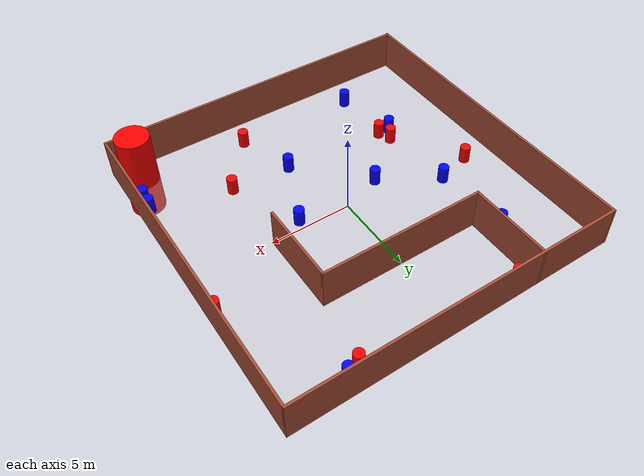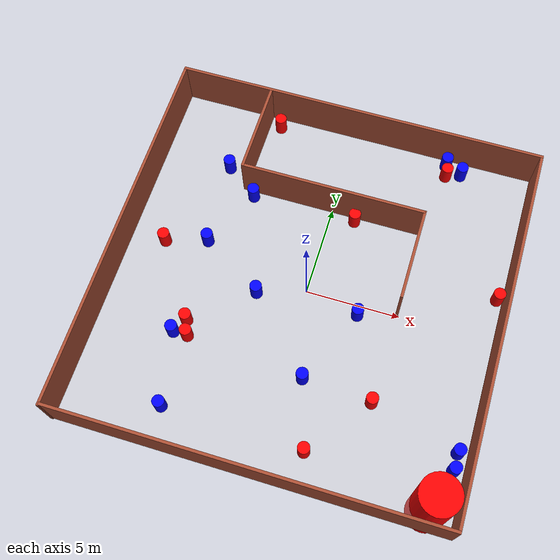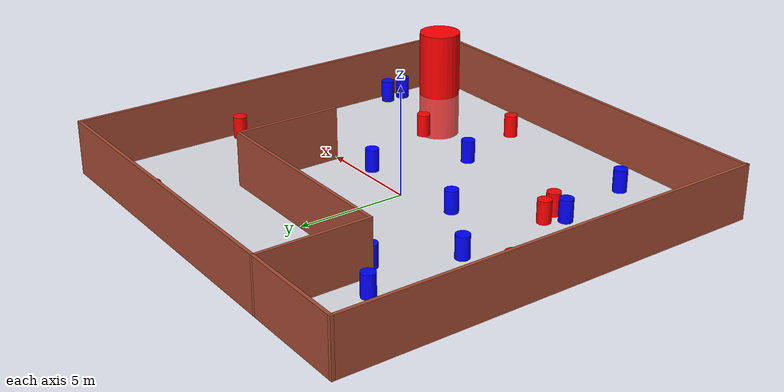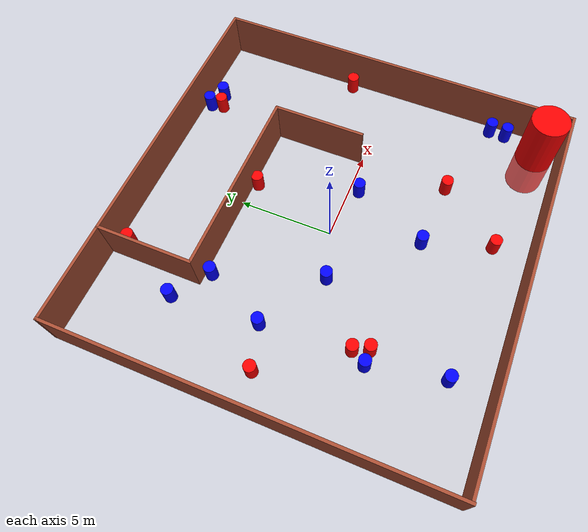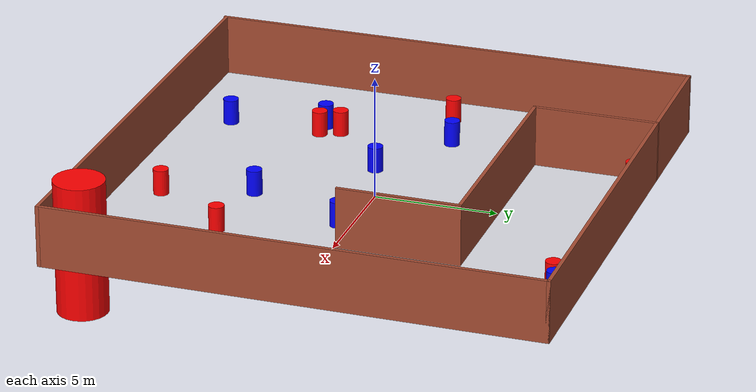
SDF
<sdf version="1.6">
 <world name="default">
  <light name="sun" type="directional">
   <pose>0 0 10 0 -0 0</pose>
   <diffuse>1 1 1 1</diffuse>
   <specular>1 1 1 1</specular>
   <attenuation>
    <range>1000</range>
    <constant>0.9</constant>
    <linear>0.01</linear>
    <quadratic>0.001</quadratic>
   </attenuation>
   <direction>-0.5 0.1 -0.9</direction>
  </light>
  <gravity>0 0 -9.8</gravity>
  <magnetic_field>6e-06 2.3e-05 -4.2e-05</magnetic_field>
  <atmosphere type="adiabatic"/>
  <physics name="default_physics" default="0" type="ode">
   <max_step_size>0.001</max_step_size>
   <real_time_factor>1</real_time_factor>
   <real_time_update_rate>1000</real_time_update_rate>
  </physics>
  <scene><ambient>0.4 0.4 0.4 1</ambient><background>0.7 0.7 0.7 1</background><shadows>1</shadows></scene>
  <spherical_coordinates>
   <surface_model>EARTH_WGS84</surface_model>
   <latitude_deg>0</latitude_deg>
   <longitude_deg>0</longitude_deg>
   <elevation>0</elevation>
   <heading_deg>0</heading_deg>
  </spherical_coordinates>
  <model name="Nuclear_workshop_with_barrels">
   <link name="link_0">
    <pose>4.22455 -4.64819 0.041667 0 -0 0</pose>
    <inertial>
     <mass>0.414228</mass>
     <inertia>
      <ixx>0.0482023</ixx>
      <ixy>0</ixy>
      <ixz>0</ixz>
      <iyy>0.0482023</iyy>
      <iyz>0</iyz>
      <izz>0.0204481</izz>
     </inertia>
    </inertial>
    <visual name="visual">
     <geometry><cylinder><radius>0.314211</radius><length>1.04891</length></cylinder></geometry>
     <material>
      <lighting>1</lighting>
      <script><uri>file://media/materials/scripts/gazebo.material</uri><name>Gazebo/Grey</name></script>
      <shader type="pixel"><normal_map>__default__</normal_map></shader>
      <ambient>1 0 0 1</ambient>
      <diffuse>1 0 0 1</diffuse>
      <specular>1 0 0 1</specular>
      <emissive>1 0 0 1</emissive>
     </material>
    </visual>
    <collision name="collision">
     <geometry><cylinder><radius>0.314211</radius><length>1.04891</length></cylinder></geometry>
     <surface>
      <friction>
       <ode><mu>1</mu><mu2>1</mu2><fdir1>0 0 0</fdir1><slip1>0</slip1><slip2>0</slip2></ode>
       <torsional>
        <coefficient>1</coefficient>
        <patch_radius>0</patch_radius>
        <surface_radius>0</surface_radius>
        <use_patch_radius>1</use_patch_radius>
        <ode><slip>0</slip></ode>
       </torsional>
      </friction>
      <bounce><restitution_coefficient>0</restitution_coefficient><threshold>1e+06</threshold></bounce>
      <contact>
       <collide_without_contact>0</collide_without_contact>
       <collide_without_contact_bitmask>1</collide_without_contact_bitmask>
       <collide_bitmask>1</collide_bitmask>
       <ode>
        <soft_cfm>0</soft_cfm>
        <soft_erp>0.2</soft_erp>
        <kp>1e+13</kp>
        <kd>1</kd>
        <max_vel>0.01</max_vel>
        <min_depth>0</min_depth>
       </ode>
       <bullet>
        <split_impulse>1</split_impulse>
        <split_impulse_penetration_threshold>-0.01</split_impulse_penetration_threshold>
        <soft_cfm>0</soft_cfm>
        <soft_erp>0.2</soft_erp>
        <kp>1e+13</kp>
        <kd>1</kd>
       </bullet>
      </contact>
     </surface>
    </collision>
   </link>
   <link name="link_0_clone">
    <pose>-4.85476 9.44569 0.041667 0 -0 0</pose>
    <inertial>
     <mass>0.414228</mass>
     <inertia>
      <ixx>0.0482023</ixx>
      <ixy>0</ixy>
      <ixz>0</ixz>
      <iyy>0.0482023</iyy>
      <iyz>0</iyz>
      <izz>0.0204481</izz>
     </inertia>
    </inertial>
    <visual name="visual">
     <geometry><cylinder><radius>0.314211</radius><length>1.04891</length></cylinder></geometry>
     <material>
      <lighting>1</lighting>
      <script><uri>file://media/materials/scripts/gazebo.material</uri><name>Gazebo/Grey</name></script>
      <shader type="pixel"><normal_map>__default__</normal_map></shader>
      <ambient>1 0 0 1</ambient>
      <diffuse>1 0 0 1</diffuse>
      <specular>1 0 0 1</specular>
      <emissive>1 0 0 1</emissive>
     </material>
    </visual>
    <collision name="collision">
     <geometry><cylinder><radius>0.314211</radius><length>1.04891</length></cylinder></geometry>
     <surface>
      <friction>
       <ode><mu>1</mu><mu2>1</mu2><fdir1>0 0 0</fdir1><slip1>0</slip1><slip2>0</slip2></ode>
       <torsional>
        <coefficient>1</coefficient>
        <patch_radius>0</patch_radius>
        <surface_radius>0</surface_radius>
        <use_patch_radius>1</use_patch_radius>
        <ode><slip>0</slip></ode>
       </torsional>
      </friction>
      <bounce><restitution_coefficient>0</restitution_coefficient><threshold>1e+06</threshold></bounce>
      <contact>
       <collide_without_contact>0</collide_without_contact>
       <collide_without_contact_bitmask>1</collide_without_contact_bitmask>
       <collide_bitmask>1</collide_bitmask>
       <ode>
        <soft_cfm>0</soft_cfm>
        <soft_erp>0.2</soft_erp>
        <kp>1e+13</kp>
        <kd>1</kd>
        <max_vel>0.01</max_vel>
        <min_depth>0</min_depth>
       </ode>
       <bullet>
        <split_impulse>1</split_impulse>
        <split_impulse_penetration_threshold>-0.01</split_impulse_penetration_threshold>
        <soft_cfm>0</soft_cfm>
        <soft_erp>0.2</soft_erp>
        <kp>1e+13</kp>
        <kd>1</kd>
       </bullet>
      </contact>
     </surface>
    </collision>
   </link>
   <link name="link_0_clone_0">
    <pose>-6.00021 -3.15272 0.041667 0 -0 0</pose>
    <inertial>
     <mass>0.414228</mass>
     <inertia>
      <ixx>0.0482023</ixx>
      <ixy>0</ixy>
      <ixz>0</ixz>
      <iyy>0.0482023</iyy>
      <iyz>0</iyz>
      <izz>0.0204481</izz>
     </inertia>
    </inertial>
    <visual name="visual">
     <geometry><cylinder><radius>0.314211</radius><length>1.04891</length></cylinder></geometry>
     <material>
      <lighting>1</lighting>
      <script><uri>file://media/materials/scripts/gazebo.material</uri><name>Gazebo/Grey</name></script>
      <shader type="pixel"><normal_map>__default__</normal_map></shader>
      <ambient>1 0 0 1</ambient>
      <diffuse>1 0 0 1</diffuse>
      <specular>1 0 0 1</specular>
      <emissive>1 0 0 1</emissive>
     </material>
    </visual>
    <collision name="collision">
     <geometry><cylinder><radius>0.314211</radius><length>1.04891</length></cylinder></geometry>
     <surface>
      <friction>
       <ode><mu>1</mu><mu2>1</mu2><fdir1>0 0 0</fdir1><slip1>0</slip1><slip2>0</slip2></ode>
       <torsional>
        <coefficient>1</coefficient>
        <patch_radius>0</patch_radius>
        <surface_radius>0</surface_radius>
        <use_patch_radius>1</use_patch_radius>
        <ode><slip>0</slip></ode>
       </torsional>
      </friction>
      <bounce><restitution_coefficient>0</restitution_coefficient><threshold>1e+06</threshold></bounce>
      <contact>
       <collide_without_contact>0</collide_without_contact>
       <collide_without_contact_bitmask>1</collide_without_contact_bitmask>
       <collide_bitmask>1</collide_bitmask>
       <ode>
        <soft_cfm>0</soft_cfm>
        <soft_erp>0.2</soft_erp>
        <kp>1e+13</kp>
        <kd>1</kd>
        <max_vel>0.01</max_vel>
        <min_depth>0</min_depth>
       </ode>
       <bullet>
        <split_impulse>1</split_impulse>
        <split_impulse_penetration_threshold>-0.01</split_impulse_penetration_threshold>
        <soft_cfm>0</soft_cfm>
        <soft_erp>0.2</soft_erp>
        <kp>1e+13</kp>
        <kd>1</kd>
       </bullet>
      </contact>
     </surface>
    </collision>
   </link>
   <link name="link_0_clone_1">
    <pose>-5.68428 -3.94442 0.041667 0 -0 0</pose>
    <inertial>
     <mass>0.414228</mass>
     <inertia>
      <ixx>0.0482023</ixx>
      <ixy>0</ixy>
      <ixz>0</ixz>
      <iyy>0.0482023</iyy>
      <iyz>0</iyz>
      <izz>0.0204481</izz>
     </inertia>
    </inertial>
    <visual name="visual">
     <geometry><cylinder><radius>0.314211</radius><length>1.04891</length></cylinder></geometry>
     <material>
      <lighting>1</lighting>
      <script><uri>file://media/materials/scripts/gazebo.material</uri><name>Gazebo/Grey</name></script>
      <shader type="pixel"><normal_map>__default__</normal_map></shader>
      <ambient>1 0 0 1</ambient>
      <diffuse>1 0 0 1</diffuse>
      <specular>1 0 0 1</specular>
      <emissive>1 0 0 1</emissive>
     </material>
    </visual>
    <collision name="collision">
     <geometry><cylinder><radius>0.314211</radius><length>1.04891</length></cylinder></geometry>
     <surface>
      <friction>
       <ode><mu>1</mu><mu2>1</mu2><fdir1>0 0 0</fdir1><slip1>0</slip1><slip2>0</slip2></ode>
       <torsional>
        <coefficient>1</coefficient>
        <patch_radius>0</patch_radius>
        <surface_radius>0</surface_radius>
        <use_patch_radius>1</use_patch_radius>
        <ode><slip>0</slip></ode>
       </torsional>
      </friction>
      <bounce><restitution_coefficient>0</restitution_coefficient><threshold>1e+06</threshold></bounce>
      <contact>
       <collide_without_contact>0</collide_without_contact>
       <collide_without_contact_bitmask>1</collide_without_contact_bitmask>
       <collide_bitmask>1</collide_bitmask>
       <ode>
        <soft_cfm>0</soft_cfm>
        <soft_erp>0.2</soft_erp>
        <kp>1e+13</kp>
        <kd>1</kd>
        <max_vel>0.01</max_vel>
        <min_depth>0</min_depth>
       </ode>
       <bullet>
        <split_impulse>1</split_impulse>
        <split_impulse_penetration_threshold>-0.01</split_impulse_penetration_threshold>
        <soft_cfm>0</soft_cfm>
        <soft_erp>0.2</soft_erp>
        <kp>1e+13</kp>
        <kd>1</kd>
       </bullet>
      </contact>
     </surface>
    </collision>
   </link>
   <link name="link_0_clone_2">
    <pose>9.04687 2.51288 0.041667 0 -0 0</pose>
    <inertial>
     <mass>0.414228</mass>
     <inertia>
      <ixx>0.0482023</ixx>
      <ixy>0</ixy>
      <ixz>0</ixz>
      <iyy>0.0482023</iyy>
      <iyz>0</iyz>
      <izz>0.0204481</izz>
     </inertia>
    </inertial>
    <visual name="visual">
     <geometry><cylinder><radius>0.314211</radius><length>1.04891</length></cylinder></geometry>
     <material>
      <lighting>1</lighting>
      <script><uri>file://media/materials/scripts/gazebo.material</uri><name>Gazebo/Grey</name></script>
      <shader type="pixel"><normal_map>__default__</normal_map></shader>
      <ambient>1 0 0 1</ambient>
      <diffuse>1 0 0 1</diffuse>
      <specular>1 0 0 1</specular>
      <emissive>1 0 0 1</emissive>
     </material>
    </visual>
    <collision name="collision">
     <geometry><cylinder><radius>0.314211</radius><length>1.04891</length></cylinder></geometry>
     <surface>
      <friction>
       <ode><mu>1</mu><mu2>1</mu2><fdir1>0 0 0</fdir1><slip1>0</slip1><slip2>0</slip2></ode>
       <torsional>
        <coefficient>1</coefficient>
        <patch_radius>0</patch_radius>
        <surface_radius>0</surface_radius>
        <use_patch_radius>1</use_patch_radius>
        <ode><slip>0</slip></ode>
       </torsional>
      </friction>
      <bounce><restitution_coefficient>0</restitution_coefficient><threshold>1e+06</threshold></bounce>
      <contact>
       <collide_without_contact>0</collide_without_contact>
       <collide_without_contact_bitmask>1</collide_without_contact_bitmask>
       <collide_bitmask>1</collide_bitmask>
       <ode>
        <soft_cfm>0</soft_cfm>
        <soft_erp>0.2</soft_erp>
        <kp>1e+13</kp>
        <kd>1</kd>
        <max_vel>0.01</max_vel>
        <min_depth>0</min_depth>
       </ode>
       <bullet>
        <split_impulse>1</split_impulse>
        <split_impulse_penetration_threshold>-0.01</split_impulse_penetration_threshold>
        <soft_cfm>0</soft_cfm>
        <soft_erp>0.2</soft_erp>
        <kp>1e+13</kp>
        <kd>1</kd>
       </bullet>
      </contact>
     </surface>
    </collision>
   </link>
   <link name="link_0_clone_3">
    <pose>0.732373 4.82512 0.041667 0 -0 0</pose>
    <inertial>
     <mass>0.414228</mass>
     <inertia>
      <ixx>0.0482023</ixx>
      <ixy>0</ixy>
      <ixz>0</ixz>
      <iyy>0.0482023</iyy>
      <iyz>0</iyz>
      <izz>0.0204481</izz>
     </inertia>
    </inertial>
    <visual name="visual">
     <geometry><cylinder><radius>0.314211</radius><length>1.04891</length></cylinder></geometry>
     <material>
      <lighting>1</lighting>
      <script><uri>file://media/materials/scripts/gazebo.material</uri><name>Gazebo/Grey</name></script>
      <shader type="pixel"><normal_map>__default__</normal_map></shader>
      <ambient>1 0 0 1</ambient>
      <diffuse>1 0 0 1</diffuse>
      <specular>1 0 0 1</specular>
      <emissive>1 0 0 1</emissive>
     </material>
    </visual>
    <collision name="collision">
     <geometry><cylinder><radius>0.314211</radius><length>1.04891</length></cylinder></geometry>
     <surface>
      <friction>
       <ode><mu>1</mu><mu2>1</mu2><fdir1>0 0 0</fdir1><slip1>0</slip1><slip2>0</slip2></ode>
       <torsional>
        <coefficient>1</coefficient>
        <patch_radius>0</patch_radius>
        <surface_radius>0</surface_radius>
        <use_patch_radius>1</use_patch_radius>
        <ode><slip>0</slip></ode>
       </torsional>
      </friction>
      <bounce><restitution_coefficient>0</restitution_coefficient><threshold>1e+06</threshold></bounce>
      <contact>
       <collide_without_contact>0</collide_without_contact>
       <collide_without_contact_bitmask>1</collide_without_contact_bitmask>
       <collide_bitmask>1</collide_bitmask>
       <ode>
        <soft_cfm>0</soft_cfm>
        <soft_erp>0.2</soft_erp>
        <kp>1e+13</kp>
        <kd>1</kd>
        <max_vel>0.01</max_vel>
        <min_depth>0</min_depth>
       </ode>
       <bullet>
        <split_impulse>1</split_impulse>
        <split_impulse_penetration_threshold>-0.01</split_impulse_penetration_threshold>
        <soft_cfm>0</soft_cfm>
        <soft_erp>0.2</soft_erp>
        <kp>1e+13</kp>
        <kd>1</kd>
       </bullet>
      </contact>
     </surface>
    </collision>
   </link>
   <link name="link_0_clone_4">
    <pose>-8.64518 0.809518 0.041667 0 -0 0</pose>
    <inertial>
     <mass>0.414228</mass>
     <inertia>
      <ixx>0.0482023</ixx>
      <ixy>0</ixy>
      <ixz>0</ixz>
      <iyy>0.0482023</iyy>
      <iyz>0</iyz>
      <izz>0.0204481</izz>
     </inertia>
    </inertial>
    <visual name="visual">
     <geometry><cylinder><radius>0.314211</radius><length>1.04891</length></cylinder></geometry>
     <material>
      <lighting>1</lighting>
      <script><uri>file://media/materials/scripts/gazebo.material</uri><name>Gazebo/Grey</name></script>
      <shader type="pixel"><normal_map>__default__</normal_map></shader>
      <ambient>1 0 0 1</ambient>
      <diffuse>1 0 0 1</diffuse>
      <specular>1 0 0 1</specular>
      <emissive>1 0 0 1</emissive>
     </material>
    </visual>
    <collision name="collision">
     <geometry><cylinder><radius>0.314211</radius><length>1.04891</length></cylinder></geometry>
     <surface>
      <friction>
       <ode><mu>1</mu><mu2>1</mu2><fdir1>0 0 0</fdir1><slip1>0</slip1><slip2>0</slip2></ode>
       <torsional>
        <coefficient>1</coefficient>
        <patch_radius>0</patch_radius>
        <surface_radius>0</surface_radius>
        <use_patch_radius>1</use_patch_radius>
        <ode><slip>0</slip></ode>
       </torsional>
      </friction>
      <bounce><restitution_coefficient>0</restitution_coefficient><threshold>1e+06</threshold></bounce>
      <contact>
       <collide_without_contact>0</collide_without_contact>
       <collide_without_contact_bitmask>1</collide_without_contact_bitmask>
       <collide_bitmask>1</collide_bitmask>
       <ode>
        <soft_cfm>0</soft_cfm>
        <soft_erp>0.2</soft_erp>
        <kp>1e+13</kp>
        <kd>1</kd>
        <max_vel>0.01</max_vel>
        <min_depth>0</min_depth>
       </ode>
       <bullet>
        <split_impulse>1</split_impulse>
        <split_impulse_penetration_threshold>-0.01</split_impulse_penetration_threshold>
        <soft_cfm>0</soft_cfm>
        <soft_erp>0.2</soft_erp>
        <kp>1e+13</kp>
        <kd>1</kd>
       </bullet>
      </contact>
     </surface>
    </collision>
   </link>
   <link name="link_0_clone_5">
    <pose>1.72934 -7.92771 0.041667 0 -0 0</pose>
    <inertial>
     <mass>0.414228</mass>
     <inertia>
      <ixx>0.0482023</ixx>
      <ixy>0</ixy>
      <ixz>0</ixz>
      <iyy>0.0482023</iyy>
      <iyz>0</iyz>
      <izz>0.0204481</izz>
     </inertia>
    </inertial>
    <visual name="visual">
     <geometry><cylinder><radius>0.314211</radius><length>1.04891</length></cylinder></geometry>
     <material>
      <lighting>1</lighting>
      <script><uri>file://media/materials/scripts/gazebo.material</uri><name>Gazebo/Grey</name></script>
      <shader type="pixel"><normal_map>__default__</normal_map></shader>
      <ambient>1 0 0 1</ambient>
      <diffuse>1 0 0 1</diffuse>
      <specular>1 0 0 1</specular>
      <emissive>1 0 0 1</emissive>
     </material>
    </visual>
    <collision name="collision">
     <geometry><cylinder><radius>0.314211</radius><length>1.04891</length></cylinder></geometry>
     <surface>
      <friction>
       <ode><mu>1</mu><mu2>1</mu2><fdir1>0 0 0</fdir1><slip1>0</slip1><slip2>0</slip2></ode>
       <torsional>
        <coefficient>1</coefficient>
        <patch_radius>0</patch_radius>
        <surface_radius>0</surface_radius>
        <use_patch_radius>1</use_patch_radius>
        <ode><slip>0</slip></ode>
       </torsional>
      </friction>
      <bounce><restitution_coefficient>0</restitution_coefficient><threshold>1e+06</threshold></bounce>
      <contact>
       <collide_without_contact>0</collide_without_contact>
       <collide_without_contact_bitmask>1</collide_without_contact_bitmask>
       <collide_bitmask>1</collide_bitmask>
       <ode>
        <soft_cfm>0</soft_cfm>
        <soft_erp>0.2</soft_erp>
        <kp>1e+13</kp>
        <kd>1</kd>
        <max_vel>0.01</max_vel>
        <min_depth>0</min_depth>
       </ode>
       <bullet>
        <split_impulse>1</split_impulse>
        <split_impulse_penetration_threshold>-0.01</split_impulse_penetration_threshold>
        <soft_cfm>0</soft_cfm>
        <soft_erp>0.2</soft_erp>
        <kp>1e+13</kp>
        <kd>1</kd>
       </bullet>
      </contact>
     </surface>
    </collision>
   </link>
   <link name="link_0_clone_5_clone">
    <pose>8.19098 -8.61903 0.041667 0 -0 0</pose>
    <inertial>
     <mass>22.5673</mass>
     <inertia><ixx>61.6937</ixx><ixy>0</ixy><ixz>0</ixz><iyy>61.6937</iyy><iyz>0</iyz><izz>11.6814</izz></inertia>
    </inertial>
    <visual name="visual">
     <geometry><cylinder><radius>1.01747</radius><length>5.44972</length></cylinder></geometry>
     <material>
      <lighting>1</lighting>
      <script><uri>file://media/materials/scripts/gazebo.material</uri><name>Gazebo/Grey</name></script>
      <shader type="pixel"><normal_map>__default__</normal_map></shader>
      <ambient>1 0 0 1</ambient>
      <diffuse>1 0 0 1</diffuse>
      <specular>1 0 0 1</specular>
      <emissive>1 0 0 1</emissive>
     </material>
    </visual>
    <collision name="collision">
     <geometry><cylinder><radius>1.01747</radius><length>5.44972</length></cylinder></geometry>
     <surface>
      <friction>
       <ode><mu>1</mu><mu2>1</mu2><fdir1>0 0 0</fdir1><slip1>0</slip1><slip2>0</slip2></ode>
       <torsional>
        <coefficient>1</coefficient>
        <patch_radius>0</patch_radius>
        <surface_radius>0</surface_radius>
        <use_patch_radius>1</use_patch_radius>
        <ode><slip>0</slip></ode>
       </torsional>
      </friction>
      <bounce><restitution_coefficient>0</restitution_coefficient><threshold>1e+06</threshold></bounce>
      <contact>
       <collide_without_contact>0</collide_without_contact>
       <collide_without_contact_bitmask>1</collide_without_contact_bitmask>
       <collide_bitmask>1</collide_bitmask>
       <ode>
        <soft_cfm>0</soft_cfm>
        <soft_erp>0.2</soft_erp>
        <kp>1e+13</kp>
        <kd>1</kd>
        <max_vel>0.01</max_vel>
        <min_depth>0</min_depth>
       </ode>
       <bullet>
        <split_impulse>1</split_impulse>
        <split_impulse_penetration_threshold>-0.01</split_impulse_penetration_threshold>
        <soft_cfm>0</soft_cfm>
        <soft_erp>0.2</soft_erp>
        <kp>1e+13</kp>
        <kd>1</kd>
       </bullet>
      </contact>
     </surface>
    </collision>
   </link>
   <link name="link_0_clone_6">
    <pose>-3.04158 -0.667074 0.041667 0 -0 0</pose>
    <inertial>
     <mass>0.414228</mass>
     <inertia>
      <ixx>0.0482023</ixx>
      <ixy>0</ixy>
      <ixz>0</ixz>
      <iyy>0.0482023</iyy>
      <iyz>0</iyz>
      <izz>0.0204481</izz>
     </inertia>
    </inertial>
    <visual name="visual">
     <geometry><cylinder><radius>0.314211</radius><length>1.04891</length></cylinder></geometry>
     <material>
      <lighting>1</lighting>
      <script><uri>file://media/materials/scripts/gazebo.material</uri><name>Gazebo/Grey</name></script>
      <shader type="pixel"><normal_map>__default__</normal_map></shader>
      <ambient>0 0 1 1</ambient>
      <diffuse>0 0 1 1</diffuse>
      <specular>0 0 1 1</specular>
      <emissive>0 0 1 1</emissive>
     </material>
    </visual>
    <collision name="collision">
     <geometry><cylinder><radius>0.314211</radius><length>1.04891</length></cylinder></geometry>
     <surface>
      <friction>
       <ode><mu>1</mu><mu2>1</mu2><fdir1>0 0 0</fdir1><slip1>0</slip1><slip2>0</slip2></ode>
       <torsional>
        <coefficient>1</coefficient>
        <patch_radius>0</patch_radius>
        <surface_radius>0</surface_radius>
        <use_patch_radius>1</use_patch_radius>
        <ode><slip>0</slip></ode>
       </torsional>
      </friction>
      <bounce><restitution_coefficient>0</restitution_coefficient><threshold>1e+06</threshold></bounce>
      <contact>
       <collide_without_contact>0</collide_without_contact>
       <collide_without_contact_bitmask>1</collide_without_contact_bitmask>
       <collide_bitmask>1</collide_bitmask>
       <ode>
        <soft_cfm>0</soft_cfm>
        <soft_erp>0.2</soft_erp>
        <kp>1e+13</kp>
        <kd>1</kd>
        <max_vel>0.01</max_vel>
        <min_depth>0</min_depth>
       </ode>
       <bullet>
        <split_impulse>1</split_impulse>
        <split_impulse_penetration_threshold>-0.01</split_impulse_penetration_threshold>
        <soft_cfm>0</soft_cfm>
        <soft_erp>0.2</soft_erp>
        <kp>1e+13</kp>
        <kd>1</kd>
       </bullet>
      </contact>
     </surface>
    </collision>
   </link>
   <link name="link_0_clone_6_clone">
    <pose>-4.94614 4.73893 0.041667 0 -0 0</pose>
    <inertial>
     <mass>0.414228</mass>
     <inertia>
      <ixx>0.0482023</ixx>
      <ixy>0</ixy>
      <ixz>0</ixz>
      <iyy>0.0482023</iyy>
      <iyz>0</iyz>
      <izz>0.0204481</izz>
     </inertia>
    </inertial>
    <visual name="visual">
     <geometry><cylinder><radius>0.314211</radius><length>1.04891</length></cylinder></geometry>
     <material>
      <lighting>1</lighting>
      <script><uri>file://media/materials/scripts/gazebo.material</uri><name>Gazebo/Grey</name></script>
      <shader type="pixel"><normal_map>__default__</normal_map></shader>
      <ambient>0 0 1 1</ambient>
      <diffuse>0 0 1 1</diffuse>
      <specular>0 0 1 1</specular>
      <emissive>0 0 1 1</emissive>
     </material>
    </visual>
    <collision name="collision">
     <geometry><cylinder><radius>0.314211</radius><length>1.04891</length></cylinder></geometry>
     <surface>
      <friction>
       <ode><mu>1</mu><mu2>1</mu2><fdir1>0 0 0</fdir1><slip1>0</slip1><slip2>0</slip2></ode>
       <torsional>
        <coefficient>1</coefficient>
        <patch_radius>0</patch_radius>
        <surface_radius>0</surface_radius>
        <use_patch_radius>1</use_patch_radius>
        <ode><slip>0</slip></ode>
       </torsional>
      </friction>
      <bounce><restitution_coefficient>0</restitution_coefficient><threshold>1e+06</threshold></bounce>
      <contact>
       <collide_without_contact>0</collide_without_contact>
       <collide_without_contact_bitmask>1</collide_without_contact_bitmask>
       <collide_bitmask>1</collide_bitmask>
       <ode>
        <soft_cfm>0</soft_cfm>
        <soft_erp>0.2</soft_erp>
        <kp>1e+13</kp>
        <kd>1</kd>
        <max_vel>0.01</max_vel>
        <min_depth>0</min_depth>
       </ode>
       <bullet>
        <split_impulse>1</split_impulse>
        <split_impulse_penetration_threshold>-0.01</split_impulse_penetration_threshold>
        <soft_cfm>0</soft_cfm>
        <soft_erp>0.2</soft_erp>
        <kp>1e+13</kp>
        <kd>1</kd>
       </bullet>
      </contact>
     </surface>
    </collision>
   </link>
   <link name="link_0_clone_6_clone_0">
    <pose>0.597169 -4.4411 0.041667 0 -0 0</pose>
    <inertial>
     <mass>0.414228</mass>
     <inertia>
      <ixx>0.0482023</ixx>
      <ixy>0</ixy>
      <ixz>0</ixz>
      <iyy>0.0482023</iyy>
      <iyz>0</iyz>
      <izz>0.0204481</izz>
     </inertia>
    </inertial>
    <visual name="visual">
     <geometry><cylinder><radius>0.314211</radius><length>1.04891</length></cylinder></geometry>
     <material>
      <lighting>1</lighting>
      <script><uri>file://media/materials/scripts/gazebo.material</uri><name>Gazebo/Grey</name></script>
      <shader type="pixel"><normal_map>__default__</normal_map></shader>
      <ambient>0 0 1 1</ambient>
      <diffuse>0 0 1 1</diffuse>
      <specular>0 0 1 1</specular>
      <emissive>0 0 1 1</emissive>
     </material>
    </visual>
    <collision name="collision">
     <geometry><cylinder><radius>0.314211</radius><length>1.04891</length></cylinder></geometry>
     <surface>
      <friction>
       <ode><mu>1</mu><mu2>1</mu2><fdir1>0 0 0</fdir1><slip1>0</slip1><slip2>0</slip2></ode>
       <torsional>
        <coefficient>1</coefficient>
        <patch_radius>0</patch_radius>
        <surface_radius>0</surface_radius>
        <use_patch_radius>1</use_patch_radius>
        <ode><slip>0</slip></ode>
       </torsional>
      </friction>
      <bounce><restitution_coefficient>0</restitution_coefficient><threshold>1e+06</threshold></bounce>
      <contact>
       <collide_without_contact>0</collide_without_contact>
       <collide_without_contact_bitmask>1</collide_without_contact_bitmask>
       <collide_bitmask>1</collide_bitmask>
       <ode>
        <soft_cfm>0</soft_cfm>
        <soft_erp>0.2</soft_erp>
        <kp>1e+13</kp>
        <kd>1</kd>
        <max_vel>0.01</max_vel>
        <min_depth>0</min_depth>
       </ode>
       <bullet>
        <split_impulse>1</split_impulse>
        <split_impulse_penetration_threshold>-0.01</split_impulse_penetration_threshold>
        <soft_cfm>0</soft_cfm>
        <soft_erp>0.2</soft_erp>
        <kp>1e+13</kp>
        <kd>1</kd>
       </bullet>
      </contact>
     </surface>
    </collision>
   </link>
   <link name="link_0_clone_6_clone_0_clone">
    <pose>-5.67122 -7.78261 0.041667 0 -0 0</pose>
    <inertial>
     <mass>0.414228</mass>
     <inertia>
      <ixx>0.0482023</ixx>
      <ixy>0</ixy>
      <ixz>0</ixz>
      <iyy>0.0482023</iyy>
      <iyz>0</iyz>
      <izz>0.0204481</izz>
     </inertia>
    </inertial>
    <visual name="visual">
     <geometry><cylinder><radius>0.314211</radius><length>1.04891</length></cylinder></geometry>
     <material>
      <lighting>1</lighting>
      <script><uri>file://media/materials/scripts/gazebo.material</uri><name>Gazebo/Grey</name></script>
      <shader type="pixel"><normal_map>__default__</normal_map></shader>
      <ambient>0 0 1 1</ambient>
      <diffuse>0 0 1 1</diffuse>
      <specular>0 0 1 1</specular>
      <emissive>0 0 1 1</emissive>
     </material>
    </visual>
    <collision name="collision">
     <geometry><cylinder><radius>0.314211</radius><length>1.04891</length></cylinder></geometry>
     <surface>
      <friction>
       <ode><mu>1</mu><mu2>1</mu2><fdir1>0 0 0</fdir1><slip1>0</slip1><slip2>0</slip2></ode>
       <torsional>
        <coefficient>1</coefficient>
        <patch_radius>0</patch_radius>
        <surface_radius>0</surface_radius>
        <use_patch_radius>1</use_patch_radius>
        <ode><slip>0</slip></ode>
       </torsional>
      </friction>
      <bounce><restitution_coefficient>0</restitution_coefficient><threshold>1e+06</threshold></bounce>
      <contact>
       <collide_without_contact>0</collide_without_contact>
       <collide_without_contact_bitmask>1</collide_without_contact_bitmask>
       <collide_bitmask>1</collide_bitmask>
       <ode>
        <soft_cfm>0</soft_cfm>
        <soft_erp>0.2</soft_erp>
        <kp>1e+13</kp>
        <kd>1</kd>
        <max_vel>0.01</max_vel>
        <min_depth>0</min_depth>
       </ode>
       <bullet>
        <split_impulse>1</split_impulse>
        <split_impulse_penetration_threshold>-0.01</split_impulse_penetration_threshold>
        <soft_cfm>0</soft_cfm>
        <soft_erp>0.2</soft_erp>
        <kp>1e+13</kp>
        <kd>1</kd>
       </bullet>
      </contact>
     </surface>
    </collision>
   </link>
   <link name="link_0_clone_6_clone_1">
    <pose>-6.75988 6.08374 0.041667 0 -0 0</pose>
    <inertial>
     <mass>0.414228</mass>
     <inertia>
      <ixx>0.0482023</ixx>
      <ixy>0</ixy>
      <ixz>0</ixz>
      <iyy>0.0482023</iyy>
      <iyz>0</iyz>
      <izz>0.0204481</izz>
     </inertia>
    </inertial>
    <visual name="visual">
     <geometry><cylinder><radius>0.314211</radius><length>1.04891</length></cylinder></geometry>
     <material>
      <lighting>1</lighting>
      <script><uri>file://media/materials/scripts/gazebo.material</uri><name>Gazebo/Grey</name></script>
      <shader type="pixel"><normal_map>__default__</normal_map></shader>
      <ambient>0 0 1 1</ambient>
      <diffuse>0 0 1 1</diffuse>
      <specular>0 0 1 1</specular>
      <emissive>0 0 1 1</emissive>
     </material>
    </visual>
    <collision name="collision">
     <geometry><cylinder><radius>0.314211</radius><length>1.04891</length></cylinder></geometry>
     <surface>
      <friction>
       <ode><mu>1</mu><mu2>1</mu2><fdir1>0 0 0</fdir1><slip1>0</slip1><slip2>0</slip2></ode>
       <torsional>
        <coefficient>1</coefficient>
        <patch_radius>0</patch_radius>
        <surface_radius>0</surface_radius>
        <use_patch_radius>1</use_patch_radius>
        <ode><slip>0</slip></ode>
       </torsional>
      </friction>
      <bounce><restitution_coefficient>0</restitution_coefficient><threshold>1e+06</threshold></bounce>
      <contact>
       <collide_without_contact>0</collide_without_contact>
       <collide_without_contact_bitmask>1</collide_without_contact_bitmask>
       <collide_bitmask>1</collide_bitmask>
       <ode>
        <soft_cfm>0</soft_cfm>
        <soft_erp>0.2</soft_erp>
        <kp>1e+13</kp>
        <kd>1</kd>
        <max_vel>0.01</max_vel>
        <min_depth>0</min_depth>
       </ode>
       <bullet>
        <split_impulse>1</split_impulse>
        <split_impulse_penetration_threshold>-0.01</split_impulse_penetration_threshold>
        <soft_cfm>0</soft_cfm>
        <soft_erp>0.2</soft_erp>
        <kp>1e+13</kp>
        <kd>1</kd>
       </bullet>
      </contact>
     </surface>
    </collision>
   </link>
   <link name="link_0_clone_6_clone_1_clone">
    <pose>2.32554 -0.381453 0.041667 0 -0 0</pose>
    <inertial>
     <mass>0.414228</mass>
     <inertia>
      <ixx>0.0482023</ixx>
      <ixy>0</ixy>
      <ixz>0</ixz>
      <iyy>0.0482023</iyy>
      <iyz>0</iyz>
      <izz>0.0204481</izz>
     </inertia>
    </inertial>
    <visual name="visual">
     <geometry><cylinder><radius>0.314211</radius><length>1.04891</length></cylinder></geometry>
     <material>
      <lighting>1</lighting>
      <script><uri>file://media/materials/scripts/gazebo.material</uri><name>Gazebo/Grey</name></script>
      <shader type="pixel"><normal_map>__default__</normal_map></shader>
      <ambient>0 0 1 1</ambient>
      <diffuse>0 0 1 1</diffuse>
      <specular>0 0 1 1</specular>
      <emissive>0 0 1 1</emissive>
     </material>
    </visual>
    <collision name="collision">
     <geometry><cylinder><radius>0.314211</radius><length>1.04891</length></cylinder></geometry>
     <surface>
      <friction>
       <ode><mu>1</mu><mu2>1</mu2><fdir1>0 0 0</fdir1><slip1>0</slip1><slip2>0</slip2></ode>
       <torsional>
        <coefficient>1</coefficient>
        <patch_radius>0</patch_radius>
        <surface_radius>0</surface_radius>
        <use_patch_radius>1</use_patch_radius>
        <ode><slip>0</slip></ode>
       </torsional>
      </friction>
      <bounce><restitution_coefficient>0</restitution_coefficient><threshold>1e+06</threshold></bounce>
      <contact>
       <collide_without_contact>0</collide_without_contact>
       <collide_without_contact_bitmask>1</collide_without_contact_bitmask>
       <collide_bitmask>1</collide_bitmask>
       <ode>
        <soft_cfm>0</soft_cfm>
        <soft_erp>0.2</soft_erp>
        <kp>1e+13</kp>
        <kd>1</kd>
        <max_vel>0.01</max_vel>
        <min_depth>0</min_depth>
       </ode>
       <bullet>
        <split_impulse>1</split_impulse>
        <split_impulse_penetration_threshold>-0.01</split_impulse_penetration_threshold>
        <soft_cfm>0</soft_cfm>
        <soft_erp>0.2</soft_erp>
        <kp>1e+13</kp>
        <kd>1</kd>
       </bullet>
      </contact>
     </surface>
    </collision>
   </link>
   <link name="link_0_clone_6_clone_1_clone_0">
    <pose>5.60601 9.2827 0.041667 0 -0 0</pose>
    <inertial>
     <mass>0.414228</mass>
     <inertia>
      <ixx>0.0482023</ixx>
      <ixy>0</ixy>
      <ixz>0</ixz>
      <iyy>0.0482023</iyy>
      <iyz>0</iyz>
      <izz>0.0204481</izz>
     </inertia>
    </inertial>
    <visual name="visual">
     <geometry><cylinder><radius>0.314211</radius><length>1.04891</length></cylinder></geometry>
     <material>
      <lighting>1</lighting>
      <script><uri>file://media/materials/scripts/gazebo.material</uri><name>Gazebo/Grey</name></script>
      <shader type="pixel"><normal_map>__default__</normal_map></shader>
      <ambient>0 0 1 1</ambient>
      <diffuse>0 0 1 1</diffuse>
      <specular>0 0 1 1</specular>
      <emissive>0 0 1 1</emissive>
     </material>
    </visual>
    <collision name="collision">
     <geometry><cylinder><radius>0.314211</radius><length>1.04891</length></cylinder></geometry>
     <surface>
      <friction>
       <ode><mu>1</mu><mu2>1</mu2><fdir1>0 0 0</fdir1><slip1>0</slip1><slip2>0</slip2></ode>
       <torsional>
        <coefficient>1</coefficient>
        <patch_radius>0</patch_radius>
        <surface_radius>0</surface_radius>
        <use_patch_radius>1</use_patch_radius>
        <ode><slip>0</slip></ode>
       </torsional>
      </friction>
      <bounce><restitution_coefficient>0</restitution_coefficient><threshold>1e+06</threshold></bounce>
      <contact>
       <collide_without_contact>0</collide_without_contact>
       <collide_without_contact_bitmask>1</collide_without_contact_bitmask>
       <collide_bitmask>1</collide_bitmask>
       <ode>
        <soft_cfm>0</soft_cfm>
        <soft_erp>0.2</soft_erp>
        <kp>1e+13</kp>
        <kd>1</kd>
        <max_vel>0.01</max_vel>
        <min_depth>0</min_depth>
       </ode>
       <bullet>
        <split_impulse>1</split_impulse>
        <split_impulse_penetration_threshold>-0.01</split_impulse_penetration_threshold>
        <soft_cfm>0</soft_cfm>
        <soft_erp>0.2</soft_erp>
        <kp>1e+13</kp>
        <kd>1</kd>
       </bullet>
      </contact>
     </surface>
    </collision>
   </link>
   <link name="link_0_clone_6_clone_1_clone_0_clone">
    <pose>4.68862 9.67403 0.041667 0 -0 0</pose>
    <inertial>
     <mass>0.414228</mass>
     <inertia>
      <ixx>0.0482023</ixx>
      <ixy>0</ixy>
      <ixz>0</ixz>
      <iyy>0.0482023</iyy>
      <iyz>0</iyz>
      <izz>0.0204481</izz>
     </inertia>
    </inertial>
    <visual name="visual">
     <geometry><cylinder><radius>0.314211</radius><length>1.04891</length></cylinder></geometry>
     <material>
      <lighting>1</lighting>
      <script><uri>file://media/materials/scripts/gazebo.material</uri><name>Gazebo/Grey</name></script>
      <shader type="pixel"><normal_map>__default__</normal_map></shader>
      <ambient>0 0 1 1</ambient>
      <diffuse>0 0 1 1</diffuse>
      <specular>0 0 1 1</specular>
      <emissive>0 0 1 1</emissive>
     </material>
    </visual>
    <collision name="collision">
     <geometry><cylinder><radius>0.314211</radius><length>1.04891</length></cylinder></geometry>
     <surface>
      <friction>
       <ode><mu>1</mu><mu2>1</mu2><fdir1>0 0 0</fdir1><slip1>0</slip1><slip2>0</slip2></ode>
       <torsional>
        <coefficient>1</coefficient>
        <patch_radius>0</patch_radius>
        <surface_radius>0</surface_radius>
        <use_patch_radius>1</use_patch_radius>
        <ode><slip>0</slip></ode>
       </torsional>
      </friction>
      <bounce><restitution_coefficient>0</restitution_coefficient><threshold>1e+06</threshold></bounce>
      <contact>
       <collide_without_contact>0</collide_without_contact>
       <collide_without_contact_bitmask>1</collide_without_contact_bitmask>
       <collide_bitmask>1</collide_bitmask>
       <ode>
        <soft_cfm>0</soft_cfm>
        <soft_erp>0.2</soft_erp>
        <kp>1e+13</kp>
        <kd>1</kd>
        <max_vel>0.01</max_vel>
        <min_depth>0</min_depth>
       </ode>
       <bullet>
        <split_impulse>1</split_impulse>
        <split_impulse_penetration_threshold>-0.01</split_impulse_penetration_threshold>
        <soft_cfm>0</soft_cfm>
        <soft_erp>0.2</soft_erp>
        <kp>1e+13</kp>
        <kd>1</kd>
       </bullet>
      </contact>
     </surface>
    </collision>
   </link>
   <link name="link_0_clone_6_clone_1_clone_1">
    <pose>-6.45188 -3.94489 0.041667 0 -0 0</pose>
    <inertial>
     <mass>0.414228</mass>
     <inertia>
      <ixx>0.0482023</ixx>
      <ixy>0</ixy>
      <ixz>0</ixz>
      <iyy>0.0482023</iyy>
      <iyz>0</iyz>
      <izz>0.0204481</izz>
     </inertia>
    </inertial>
    <visual name="visual">
     <geometry><cylinder><radius>0.314211</radius><length>1.04891</length></cylinder></geometry>
     <material>
      <lighting>1</lighting>
      <script><uri>file://media/materials/scripts/gazebo.material</uri><name>Gazebo/Grey</name></script>
      <shader type="pixel"><normal_map>__default__</normal_map></shader>
      <ambient>0 0 1 1</ambient>
      <diffuse>0 0 1 1</diffuse>
      <specular>0 0 1 1</specular>
      <emissive>0 0 1 1</emissive>
     </material>
    </visual>
    <collision name="collision">
     <geometry><cylinder><radius>0.314211</radius><length>1.04891</length></cylinder></geometry>
     <surface>
      <friction>
       <ode><mu>1</mu><mu2>1</mu2><fdir1>0 0 0</fdir1><slip1>0</slip1><slip2>0</slip2></ode>
       <torsional>
        <coefficient>1</coefficient>
        <patch_radius>0</patch_radius>
        <surface_radius>0</surface_radius>
        <use_patch_radius>1</use_patch_radius>
        <ode><slip>0</slip></ode>
       </torsional>
      </friction>
      <bounce><restitution_coefficient>0</restitution_coefficient><threshold>1e+06</threshold></bounce>
      <contact>
       <collide_without_contact>0</collide_without_contact>
       <collide_without_contact_bitmask>1</collide_without_contact_bitmask>
       <collide_bitmask>1</collide_bitmask>
       <ode>
        <soft_cfm>0</soft_cfm>
        <soft_erp>0.2</soft_erp>
        <kp>1e+13</kp>
        <kd>1</kd>
        <max_vel>0.01</max_vel>
        <min_depth>0</min_depth>
       </ode>
       <bullet>
        <split_impulse>1</split_impulse>
        <split_impulse_penetration_threshold>-0.01</split_impulse_penetration_threshold>
        <soft_cfm>0</soft_cfm>
        <soft_erp>0.2</soft_erp>
        <kp>1e+13</kp>
        <kd>1</kd>
       </bullet>
      </contact>
     </surface>
    </collision>
   </link>
   <link name="link_0_clone_6_clone_2">
    <pose>8.83397 -6.75463 0.041667 0 -0 0</pose>
    <inertial>
     <mass>0.414228</mass>
     <inertia>
      <ixx>0.0482023</ixx>
      <ixy>0</ixy>
      <ixz>0</ixz>
      <iyy>0.0482023</iyy>
      <iyz>0</iyz>
      <izz>0.0204481</izz>
     </inertia>
    </inertial>
    <visual name="visual">
     <geometry><cylinder><radius>0.314211</radius><length>1.04891</length></cylinder></geometry>
     <material>
      <lighting>1</lighting>
      <script><uri>file://media/materials/scripts/gazebo.material</uri><name>Gazebo/Grey</name></script>
      <shader type="pixel"><normal_map>__default__</normal_map></shader>
      <ambient>0 0 1 1</ambient>
      <diffuse>0 0 1 1</diffuse>
      <specular>0 0 1 1</specular>
      <emissive>0 0 1 1</emissive>
     </material>
    </visual>
    <collision name="collision">
     <geometry><cylinder><radius>0.314211</radius><length>1.04891</length></cylinder></geometry>
     <surface>
      <friction>
       <ode><mu>1</mu><mu2>1</mu2><fdir1>0 0 0</fdir1><slip1>0</slip1><slip2>0</slip2></ode>
       <torsional>
        <coefficient>1</coefficient>
        <patch_radius>0</patch_radius>
        <surface_radius>0</surface_radius>
        <use_patch_radius>1</use_patch_radius>
        <ode><slip>0</slip></ode>
       </torsional>
      </friction>
      <bounce><restitution_coefficient>0</restitution_coefficient><threshold>1e+06</threshold></bounce>
      <contact>
       <collide_without_contact>0</collide_without_contact>
       <collide_without_contact_bitmask>1</collide_without_contact_bitmask>
       <collide_bitmask>1</collide_bitmask>
       <ode>
        <soft_cfm>0</soft_cfm>
        <soft_erp>0.2</soft_erp>
        <kp>1e+13</kp>
        <kd>1</kd>
        <max_vel>0.01</max_vel>
        <min_depth>0</min_depth>
       </ode>
       <bullet>
        <split_impulse>1</split_impulse>
        <split_impulse_penetration_threshold>-0.01</split_impulse_penetration_threshold>
        <soft_cfm>0</soft_cfm>
        <soft_erp>0.2</soft_erp>
        <kp>1e+13</kp>
        <kd>1</kd>
       </bullet>
      </contact>
     </surface>
    </collision>
   </link>
   <link name="link_0_clone_6_clone_2_clone">
    <pose>8.84852 -5.86808 0.041667 0 -0 0</pose>
    <inertial>
     <mass>0.414228</mass>
     <inertia>
      <ixx>0.0482023</ixx>
      <ixy>0</ixy>
      <ixz>0</ixz>
      <iyy>0.0482023</iyy>
      <iyz>0</iyz>
      <izz>0.0204481</izz>
     </inertia>
    </inertial>
    <visual name="visual">
     <geometry><cylinder><radius>0.314211</radius><length>1.04891</length></cylinder></geometry>
     <material>
      <lighting>1</lighting>
      <script><uri>file://media/materials/scripts/gazebo.material</uri><name>Gazebo/Grey</name></script>
      <shader type="pixel"><normal_map>__default__</normal_map></shader>
      <ambient>0 0 1 1</ambient>
      <diffuse>0 0 1 1</diffuse>
      <specular>0 0 1 1</specular>
      <emissive>0 0 1 1</emissive>
     </material>
    </visual>
    <collision name="collision">
     <geometry><cylinder><radius>0.314211</radius><length>1.04891</length></cylinder></geometry>
     <surface>
      <friction>
       <ode><mu>1</mu><mu2>1</mu2><fdir1>0 0 0</fdir1><slip1>0</slip1><slip2>0</slip2></ode>
       <torsional>
        <coefficient>1</coefficient>
        <patch_radius>0</patch_radius>
        <surface_radius>0</surface_radius>
        <use_patch_radius>1</use_patch_radius>
        <ode><slip>0</slip></ode>
       </torsional>
      </friction>
      <bounce><restitution_coefficient>0</restitution_coefficient><threshold>1e+06</threshold></bounce>
      <contact>
       <collide_without_contact>0</collide_without_contact>
       <collide_without_contact_bitmask>1</collide_without_contact_bitmask>
       <collide_bitmask>1</collide_bitmask>
       <ode>
        <soft_cfm>0</soft_cfm>
        <soft_erp>0.2</soft_erp>
        <kp>1e+13</kp>
        <kd>1</kd>
        <max_vel>0.01</max_vel>
        <min_depth>0</min_depth>
       </ode>
       <bullet>
        <split_impulse>1</split_impulse>
        <split_impulse_penetration_threshold>-0.01</split_impulse_penetration_threshold>
        <soft_cfm>0</soft_cfm>
        <soft_erp>0.2</soft_erp>
        <kp>1e+13</kp>
        <kd>1</kd>
       </bullet>
      </contact>
     </surface>
    </collision>
   </link>
   <link name="link_0_clone_6_clone_2_clone_0">
    <pose>-6.45108 1.44904 0.041667 0 -0 0</pose>
    <inertial>
     <mass>0.414228</mass>
     <inertia>
      <ixx>0.0482023</ixx>
      <ixy>0</ixy>
      <ixz>0</ixz>
      <iyy>0.0482023</iyy>
      <iyz>0</iyz>
      <izz>0.0204481</izz>
     </inertia>
    </inertial>
    <visual name="visual">
     <geometry><cylinder><radius>0.314211</radius><length>1.04891</length></cylinder></geometry>
     <material>
      <lighting>1</lighting>
      <script><uri>file://media/materials/scripts/gazebo.material</uri><name>Gazebo/Grey</name></script>
      <shader type="pixel"><normal_map>__default__</normal_map></shader>
      <ambient>0 0 1 1</ambient>
      <diffuse>0 0 1 1</diffuse>
      <specular>0 0 1 1</specular>
      <emissive>0 0 1 1</emissive>
     </material>
    </visual>
    <collision name="collision">
     <geometry><cylinder><radius>0.314211</radius><length>1.04891</length></cylinder></geometry>
     <surface>
      <friction>
       <ode><mu>1</mu><mu2>1</mu2><fdir1>0 0 0</fdir1><slip1>0</slip1><slip2>0</slip2></ode>
       <torsional>
        <coefficient>1</coefficient>
        <patch_radius>0</patch_radius>
        <surface_radius>0</surface_radius>
        <use_patch_radius>1</use_patch_radius>
        <ode><slip>0</slip></ode>
       </torsional>
      </friction>
      <bounce><restitution_coefficient>0</restitution_coefficient><threshold>1e+06</threshold></bounce>
      <contact>
       <collide_without_contact>0</collide_without_contact>
       <collide_without_contact_bitmask>1</collide_without_contact_bitmask>
       <collide_bitmask>1</collide_bitmask>
       <ode>
        <soft_cfm>0</soft_cfm>
        <soft_erp>0.2</soft_erp>
        <kp>1e+13</kp>
        <kd>1</kd>
        <max_vel>0.01</max_vel>
        <min_depth>0</min_depth>
       </ode>
       <bullet>
        <split_impulse>1</split_impulse>
        <split_impulse_penetration_threshold>-0.01</split_impulse_penetration_threshold>
        <soft_cfm>0</soft_cfm>
        <soft_erp>0.2</soft_erp>
        <kp>1e+13</kp>
        <kd>1</kd>
       </bullet>
      </contact>
     </surface>
    </collision>
   </link>
   <link name="link_0_clone_clone">
    <pose>4.82803 9.00392 0.041667 0 -0 0</pose>
    <inertial>
     <mass>0.414228</mass>
     <inertia>
      <ixx>0.0482023</ixx>
      <ixy>0</ixy>
      <ixz>0</ixz>
      <iyy>0.0482023</iyy>
      <iyz>0</iyz>
      <izz>0.0204481</izz>
     </inertia>
    </inertial>
    <visual name="visual">
     <geometry><cylinder><radius>0.314211</radius><length>1.04891</length></cylinder></geometry>
     <material>
      <lighting>1</lighting>
      <script><uri>file://media/materials/scripts/gazebo.material</uri><name>Gazebo/Grey</name></script>
      <shader type="pixel"><normal_map>__default__</normal_map></shader>
      <ambient>1 0 0 1</ambient>
      <diffuse>1 0 0 1</diffuse>
      <specular>1 0 0 1</specular>
      <emissive>1 0 0 1</emissive>
     </material>
    </visual>
    <collision name="collision">
     <geometry><cylinder><radius>0.314211</radius><length>1.04891</length></cylinder></geometry>
     <surface>
      <friction>
       <ode><mu>1</mu><mu2>1</mu2><fdir1>0 0 0</fdir1><slip1>0</slip1><slip2>0</slip2></ode>
       <torsional>
        <coefficient>1</coefficient>
        <patch_radius>0</patch_radius>
        <surface_radius>0</surface_radius>
        <use_patch_radius>1</use_patch_radius>
        <ode><slip>0</slip></ode>
       </torsional>
      </friction>
      <bounce><restitution_coefficient>0</restitution_coefficient><threshold>1e+06</threshold></bounce>
      <contact>
       <collide_without_contact>0</collide_without_contact>
       <collide_without_contact_bitmask>1</collide_without_contact_bitmask>
       <collide_bitmask>1</collide_bitmask>
       <ode>
        <soft_cfm>0</soft_cfm>
        <soft_erp>0.2</soft_erp>
        <kp>1e+13</kp>
        <kd>1</kd>
        <max_vel>0.01</max_vel>
        <min_depth>0</min_depth>
       </ode>
       <bullet>
        <split_impulse>1</split_impulse>
        <split_impulse_penetration_threshold>-0.01</split_impulse_penetration_threshold>
        <soft_cfm>0</soft_cfm>
        <soft_erp>0.2</soft_erp>
        <kp>1e+13</kp>
        <kd>1</kd>
       </bullet>
      </contact>
     </surface>
    </collision>
   </link>
   <model name="Nuclear_Building1">
    <pose>-0.572887 0.153169 -0.458333 0 0 -1.5708</pose>
    <link name="Wall_18">
     <collision name="Wall_18_Collision">
      <geometry><box><size>20.15 0.15 2.5</size></box></geometry>
      <pose>0 0 1.25 0 -0 0</pose>
     </collision>
     <visual name="Wall_18_Visual">
      <pose>0 0 1.25 0 -0 0</pose>
      <geometry><box><size>20.15 0.15 2.5</size></box></geometry>
      <material>
       <script><uri>file://media/materials/scripts/gazebo.material</uri><name>Gazebo/Bricks</name></script>
       <ambient>1 1 1 1</ambient>
      </material>
      <meta><layer>0</layer></meta>
     </visual>
     <pose>0 -10 0 0 -0 3.14159</pose>
    </link>
    <link name="Wall_20">
     <collision name="Wall_20_Collision">
      <geometry><box><size>20.15 0.15 2.5</size></box></geometry>
      <pose>0 0 1.25 0 -0 0</pose>
     </collision>
     <visual name="Wall_20_Visual">
      <pose>0 0 1.25 0 -0 0</pose>
      <geometry><box><size>20.15 0.15 2.5</size></box></geometry>
      <material>
       <script><uri>file://media/materials/scripts/gazebo.material</uri><name>Gazebo/Bricks</name></script>
       <ambient>1 1 1 1</ambient>
      </material>
      <meta><layer>0</layer></meta>
     </visual>
     <pose>-10 0 0 0 -0 1.5708</pose>
    </link>
    <link name="Wall_22">
     <collision name="Wall_22_Collision">
      <geometry><box><size>20.15 0.15 2.5</size></box></geometry>
      <pose>0 0 1.25 0 -0 0</pose>
     </collision>
     <visual name="Wall_22_Visual">
      <pose>0 0 1.25 0 -0 0</pose>
      <geometry><box><size>20.15 0.15 2.5</size></box></geometry>
      <material>
       <script><uri>file://media/materials/scripts/gazebo.material</uri><name>Gazebo/Bricks</name></script>
       <ambient>1 1 1 1</ambient>
      </material>
      <meta><layer>0</layer></meta>
     </visual>
     <pose>9.95932 0 0 0 0 -1.5708</pose>
    </link>
    <link name="Wall_25">
     <collision name="Wall_25_Collision">
      <geometry><box><size>20.0686 0.15 2.5</size></box></geometry>
      <pose>0 0 1.25 0 -0 0</pose>
     </collision>
     <visual name="Wall_25_Visual">
      <pose>0 0 1.25 0 -0 0</pose>
      <geometry><box><size>20.0686 0.15 2.5</size></box></geometry>
      <material>
       <script><uri>file://media/materials/scripts/gazebo.material</uri><name>Gazebo/Bricks</name></script>
       <ambient>1 1 1 1</ambient>
      </material>
      <meta><layer>0</layer></meta>
     </visual>
     <pose>-0.040685 10 0 0 -0 0</pose>
    </link>
    <link name="Wall_27">
     <collision name="Wall_27_Collision">
      <geometry><box><size>5.15 0.15 2.5</size></box></geometry>
      <pose>0 0 1.25 0 -0 0</pose>
     </collision>
     <visual name="Wall_27_Visual">
      <pose>0 0 1.25 0 -0 0</pose>
      <geometry><box><size>5.15 0.15 2.5</size></box></geometry>
      <material>
       <script><uri>file://media/materials/scripts/gazebo.material</uri><name>Gazebo/Bricks</name></script>
       <ambient>1 1 1 1</ambient>
      </material>
      <meta><layer>0</layer></meta>
     </visual>
     <pose>-7.5 -5 0 0 -0 3.14159</pose>
    </link>
    <link name="Wall_29">
     <collision name="Wall_29_Collision">
      <geometry><box><size>10 0.15 2.5</size></box></geometry>
      <pose>0 0 1.25 0 -0 0</pose>
     </collision>
     <visual name="Wall_29_Visual">
      <pose>0 0 1.25 0 -0 0</pose>
      <geometry><box><size>10 0.15 2.5</size></box></geometry>
      <material>
       <script><uri>file://media/materials/scripts/gazebo.material</uri><name>Gazebo/Bricks</name></script>
       <ambient>1 1 1 1</ambient>
      </material>
      <meta><layer>0</layer></meta>
     </visual>
     <pose>-5 -0.075 0 0 -0 1.5708</pose>
    </link>
    <link name="Wall_31">
     <collision name="Wall_31_Collision">
      <geometry><box><size>5 0.15 2.5</size></box></geometry>
      <pose>0 0 1.25 0 -0 0</pose>
     </collision>
     <visual name="Wall_31_Visual">
      <pose>0 0 1.25 0 -0 0</pose>
      <geometry><box><size>5 0.15 2.5</size></box></geometry>
      <material>
       <script><uri>file://media/materials/scripts/gazebo.material</uri><name>Gazebo/Bricks</name></script>
       <ambient>1 1 1 1</ambient>
      </material>
      <meta><layer>0</layer></meta>
     </visual>
     <pose>-2.575 4.85 0 0 -0 0</pose>
    </link>
    <static>1</static>
   </model>
   <model name="my_ground_plane">
    <static>1</static>
    <link name="link">
     <collision name="collision">
      <geometry><plane><normal>0 0 1</normal><size>20 20</size></plane></geometry>
      <surface><friction><ode><mu>100</mu><mu2>50</mu2></ode></friction></surface>
     </collision>
     <visual name="visual">
      <cast_shadows>0</cast_shadows>
      <geometry><plane><normal>0 0 1</normal><size>20 20</size></plane></geometry>
      <material>
       <script>
        <uri>model://my_ground_plane/materials/scripts</uri>
        <uri>model://my_ground_plane/materials/textures/</uri>
        <name>MyGroundPlane/Image</name>
       </script>
      </material>
     </visual>
    </link>
    <pose>-0.572887 0.153169 -0.458333 0 -0 0</pose>
   </model>
   <static>0</static>
   <pose>0.572887 -0.153169 0.458333 0 -0 0</pose>
  </model>
 </world>
</sdf>
